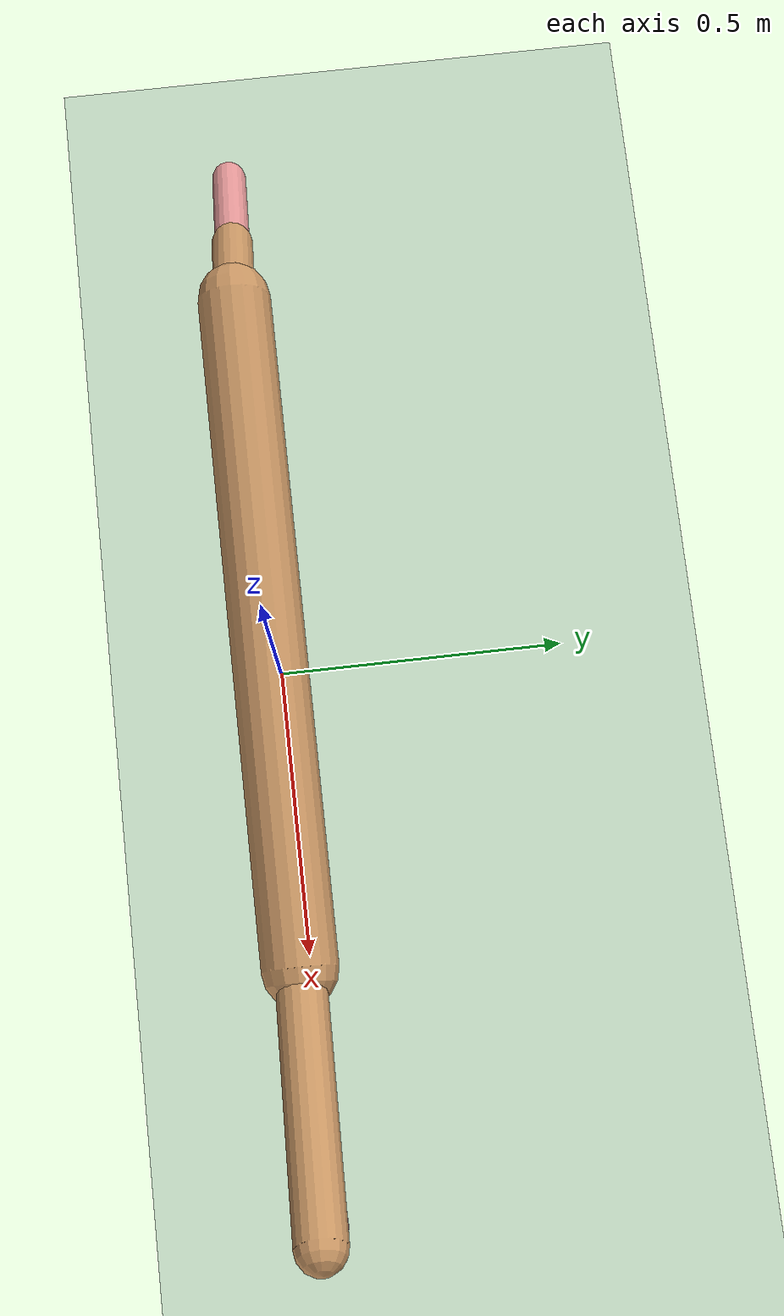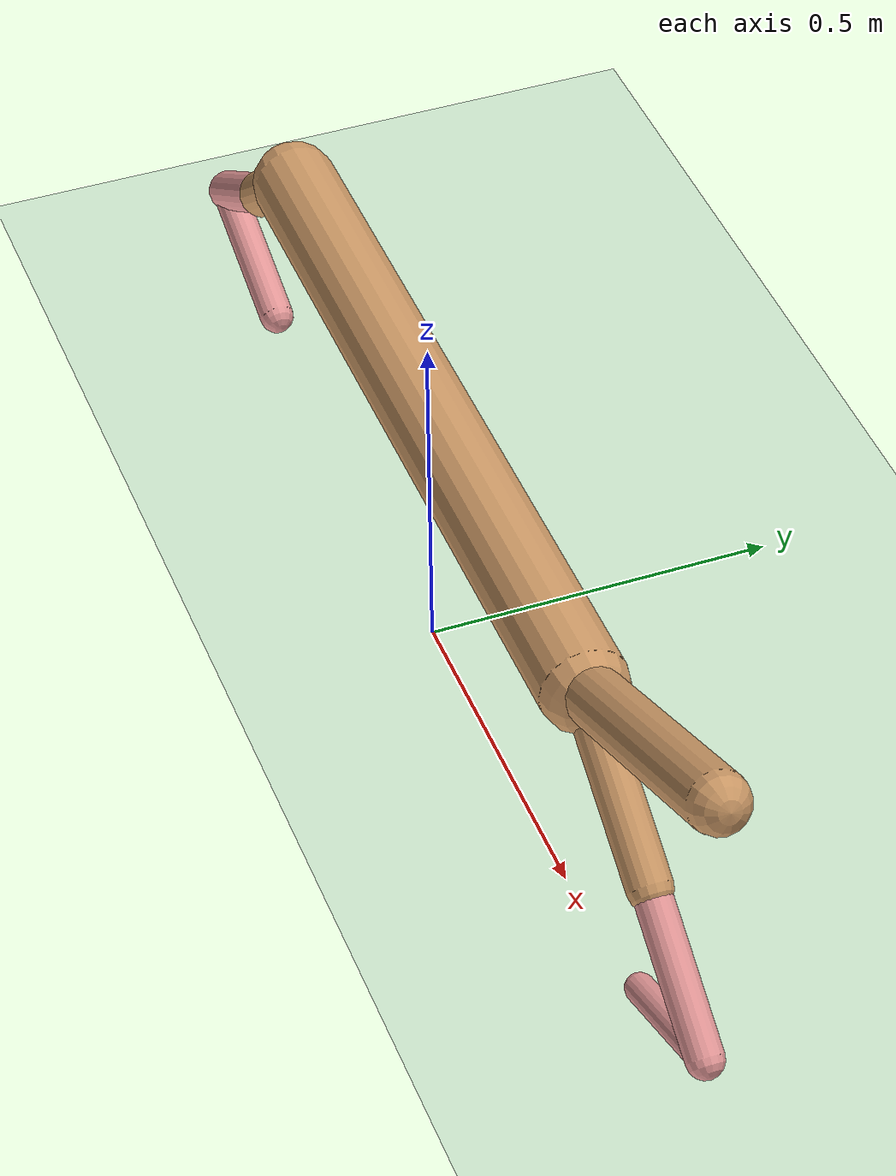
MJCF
<mujoco model="cheetah">
  <compiler angle="radian" coordinate="local" inertiafromgeom="true" settotalmass="14"/>
  <default>
    <joint armature=".1" damping=".01" limited="true" solimplimit="0 .8 .03" solreflimit=".02 1" stiffness="8"/>
    <geom conaffinity="0" condim="3" contype="1" friction=".4 .1 .1" rgba="0.8 0.6 .4 1" solimp="0.0 0.8 0.01" solref="0.02 1"/>
    <motor ctrllimited="true" ctrlrange="-1 1"/>
  </default>
  <size nstack="300000" nuser_geom="1"/>
  <option gravity="0 0 -9.81" timestep="0.01"/>
  <asset>
    <texture builtin="gradient" height="100" rgb1="1 1 1" rgb2="0 0 0" type="skybox" width="100"/>
    <texture builtin="flat" height="1278" mark="cross" markrgb="1 1 1" name="texgeom" random="0.01" rgb1="0.8 0.6 0.4" rgb2="0.8 0.6 0.4" type="cube" width="127"/>
    <texture builtin="checker" height="100" name="texplane" rgb1="0 0 0" rgb2="0.8 0.8 0.8" type="2d" width="100"/>
    <material name="MatPlane" reflectance="0.5" shininess="1" specular="1" texrepeat="60 60" texture="texplane"/>
    <material name="geom" texture="texgeom" texuniform="true"/>
  </asset>
  <worldbody>
    <light cutoff="100" diffuse="1 1 1" dir="-0 0 -1.3" directional="true" exponent="1" pos="0 0 1.3" specular=".1 .1 .1"/>
    <geom conaffinity="1" condim="3" material="MatPlane" name="floor" pos="0 0 0" rgba="0.8 0.9 0.8 1" size="40 40 40" type="plane"/>
    <body name="torso" pos="0 0 0.39">
      <camera name="track" mode="trackcom" pos="0 -3 0.3" xyaxes="1 0 0 0 0 1"/>
      <joint armature="0" axis="1 0 0" damping="0" limited="false" name="ignorex" pos="0 0 0" stiffness="0" type="slide"/>
      <joint armature="0" axis="0 0 1" damping="0" limited="false" name="ignorez" pos="0 0 0" stiffness="0" type="slide"/>
      <joint armature="0" axis="0 1 0" damping="0" limited="false" name="ignorey" pos="0 0 0" stiffness="0" type="hinge"/>
      <geom fromto="-0.55 0 0 0.55 0 0" name="torso" size="0.06" type="capsule"/>
      <geom fromto="0.55 0 0 0.95 0 0.18" name="head" size="0.04" type="capsule"/>

      <body name="bthigh" pos="-0.55 0 0">
        <joint axis="0 1 0" damping="6" name="bthigh" pos="0 0 0" range="-.52 1.05" stiffness="240" type="hinge"/>
        <geom fromto="0 0 0 -0.16 0 -0.13" name="bthigh" size="0.035" type="capsule"/>
        <body name="bshin" pos="-0.16 0 -0.13">
          <joint axis="0 1 0" damping="4.5" name="bshin" pos="0 0 0" range="-.785 .785" stiffness="180" type="hinge"/>
          <geom fromto="0 0 0 -0.18 0 -0.12" name="bshin" rgba="0.9 0.6 0.6 1" size="0.03" type="capsule"/>
          <body name="bfoot" pos="-0.18 0 -0.12">
            <joint axis="0 1 0" damping="3" name="bfoot" pos="0 0 0" range="-.4 .785" stiffness="120" type="hinge"/>
            <geom fromto="0 0 0 0.22 0 -0.08" name="bfoot" rgba="0.9 0.6 0.6 1" size="0.025" type="capsule"/>
          </body>
        </body>
      </body>

      <body name="fthigh" pos="0.55 0 0">
        <joint axis="0 1 0" damping="4.5" name="fthigh" pos="0 0 0" range="-1.5 0.8" stiffness="180" type="hinge"/>
        <geom fromto="0 0 0 0.22 0 -0.14" name="fthigh" size="0.03" type="capsule"/>
        <body name="fshin" pos="0.22 0 -0.14">
          <joint axis="0 1 0" damping="3" name="fshin" pos="0 0 0" range="-1.2 1.1" stiffness="120" type="hinge"/>
          <geom fromto="0 0 0 0.18 0 -0.12" name="fshin" rgba="0.9 0.6 0.6 1" size="0.025" type="capsule"/>
          <body name="ffoot" pos="0.18 0 -0.12">
            <joint axis="0 1 0" damping="1.5" name="ffoot" pos="0 0 0" range="-3.1 -0.3" stiffness="60" type="hinge"/>
            <geom fromto="0 0 0 -0.2 0 -0.08" name="ffoot" rgba="0.9 0.6 0.6 1" size="0.02" type="capsule"/>
          </body>
        </body>
      </body>
    </body>
  </worldbody>
  <actuator>
    <motor gear="120" joint="bthigh" name="bthigh"/>
    <motor gear="90" joint="bshin" name="bshin"/>
    <motor gear="60" joint="bfoot" name="bfoot"/>
    <motor gear="120" joint="fthigh" name="fthigh"/>
    <motor gear="60" joint="fshin" name="fshin"/>
    <motor gear="30" joint="ffoot" name="ffoot"/>
  </actuator>
</mujoco>
